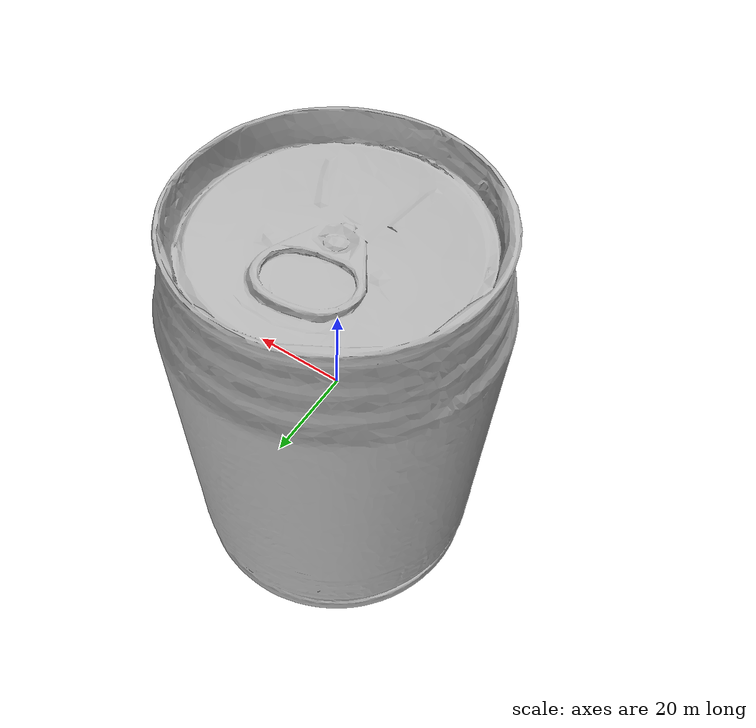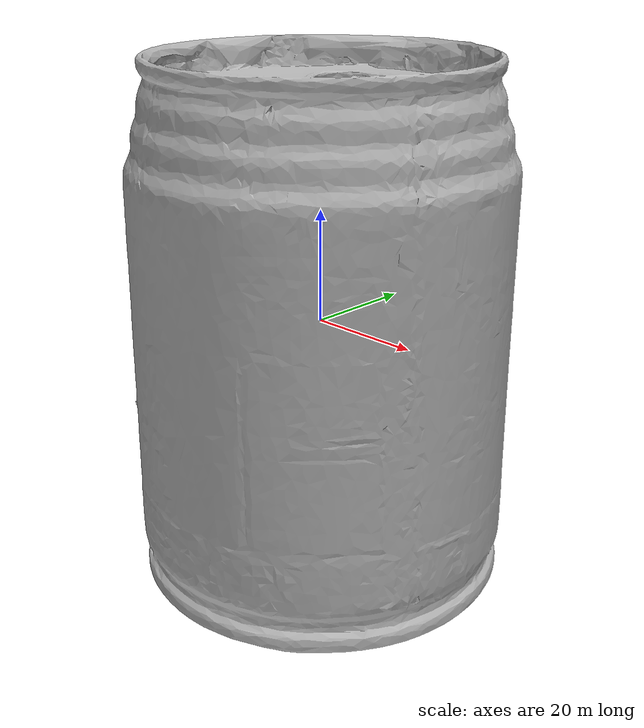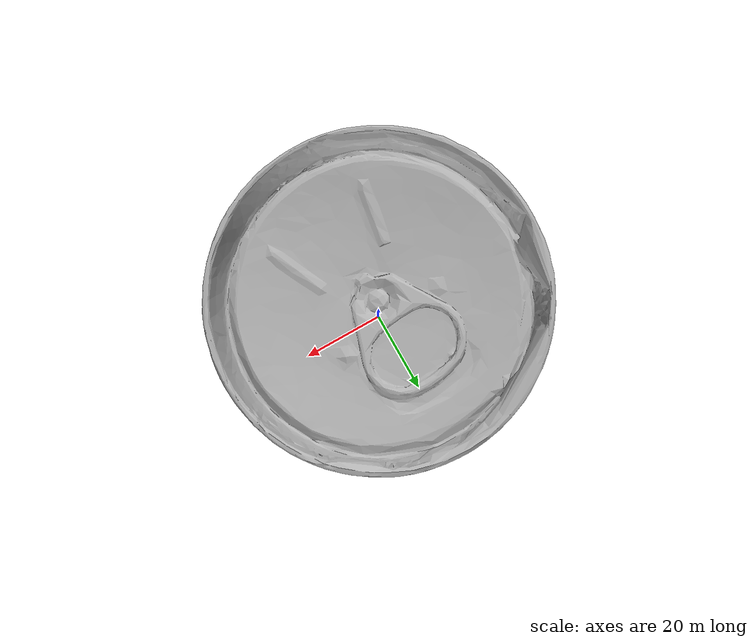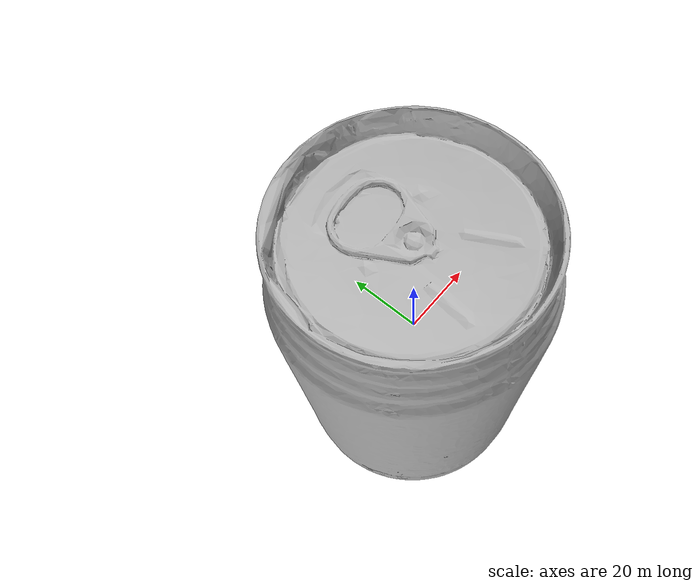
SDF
<sdf version="1.4">
 <world name="default">
  <light name="light1" type="point">
   <pose>0 0 1 0 0 0</pose>
   <diffuse>3 3 3 1</diffuse>
   <specular>3 3 3 1</specular>
  </light>
  <light name="light2" type="point">
   <pose>0 0.5 2 0 0 0</pose>
   <diffuse>1 1 1 1</diffuse>
   <specular>1 1 1 1</specular>
  </light>
  <light name="light3" type="point">
   <pose>0 0.5 2 0 0 0</pose>
   <diffuse>3 3 3 1</diffuse>
   <specular>3 3 3 1</specular>
  </light>
  <scene><ambient>0.7 0.7 0.7</ambient></scene>
  <model name="box2">
   <link name="link_box2">
    <collision name="default">
     <geometry>
      <mesh><uri>model://wooden_puzzle2/collision_meshes/collision.obj</uri><scale>1.0 1.0 1.0</scale></mesh>
     </geometry>
     <surface>
      <friction><ode><mu>0.5</mu><mu2>0.5</mu2></ode></friction>
      <contact><ode><max_vel>0</max_vel><min_depth>0.0001</min_depth><kp>1e8</kp></ode></contact>
     </surface>
    </collision>
    <visual name="default">
     <geometry>
      <mesh><uri>model://wooden_puzzle2/visual_meshes/visual.dae</uri><scale>1.0 1.0 1.0</scale></mesh>
     </geometry>
    </visual>
    <inertial>
     <mass>0.03464552015066147</mass>
     <pose>2.7402536943554878e-05 4.997663199901581e-05 6.587122334167361e-05 -0.1920274284601778 0.6112817660648215 -0.6338676817937987</pose>
     <inertia>
      <ixx>6.440233e-06</ixx>
      <iyy>6.6177017e-06</iyy>
      <izz>6.52356e-06</izz>
      <ixy>0</ixy>
      <ixz>0</ixz>
      <iyz>0</iyz>
     </inertia>
    </inertial>
   </link>
   <pose>0.28262579441070557 -0.008969889022409916 0.016917727887630463 0.020848368490384534 0.000721264974000238 -0.008964513930656141</pose>
  </model>
  <model name="box3">
   <link name="link_box3">
    <collision name="default">
     <geometry>
      <mesh><uri>model://wooden_puzzle1/collision_meshes/collision.obj</uri><scale>1.0 1.0 1.0</scale></mesh>
     </geometry>
     <surface>
      <friction><ode><mu>0.5</mu><mu2>0.5</mu2></ode></friction>
      <contact><ode><max_vel>0</max_vel><min_depth>0.0001</min_depth><kp>1e8</kp></ode></contact>
     </surface>
    </collision>
    <visual name="default">
     <geometry>
      <mesh><uri>model://wooden_puzzle1/visual_meshes/visual.dae</uri><scale>1.0 1.0 1.0</scale></mesh>
     </geometry>
    </visual>
    <inertial>
     <mass>0.03424873203039169</mass>
     <pose>-0.0001735068071866408 7.97226166469045e-05 -9.191554272547364e-05 -0.07784599296854997 -0.2636133645981781 -0.5528677830585703</pose>
     <inertia>
      <ixx>6.4618e-06</ixx>
      <iyy>6.3374077e-06</iyy>
      <izz>6.413012e-06</izz>
      <ixy>0</ixy>
      <ixz>0</ixz>
      <iyz>0</iyz>
     </inertia>
    </inertial>
   </link>
   <pose>-0.017883844673633575 -0.0416901670396328 0.016802025958895683 0.010510802475339477 -0.009455951887405185 -1.2422970558589574</pose>
  </model>
  <model name="can1">
   <link name="link_can1">
    <collision name="default">
     <geometry>
      <mesh><uri>model://pepsi/collision_meshes/collision.obj</uri><scale>1.0 1.0 1.0</scale></mesh>
     </geometry>
     <surface>
      <friction><ode><mu>0.5</mu><mu2>0.5</mu2></ode></friction>
      <contact><ode><max_vel>0</max_vel><min_depth>0.0001</min_depth><kp>1e8</kp></ode></contact>
     </surface>
    </collision>
    <visual name="default">
     <geometry><mesh><uri>model://pepsi/visual_meshes/visual.dae</uri><scale>1.0 1.0 1.0</scale></mesh></geometry>
    </visual>
    <inertial>
     <mass>0.3250696361064911</mass>
     <pose>-7.5590331107378e-05 2.99312814604491e-05 -0.0003384356386959553 -0.0010678660158137958 -0.0021735266966629516 0.5674177426725915</pose>
     <inertia>
      <ixx>0.0006476009</ixx>
      <iyy>0.0006471292</iyy>
      <izz>0.00013783273</izz>
      <ixy>0</ixy>
      <ixz>0</ixz>
      <iyz>0</iyz>
     </inertia>
    </inertial>
   </link>
   <pose>0.05043671280145645 -0.3694399893283844 0.0744963213801384 -1.9005657548911982e-05 2.14236573673511e-06 -1.0108469638808897</pose>
  </model>
  <model name="can2">
   <link name="link_can2">
    <collision name="default">
     <geometry>
      <mesh><uri>model://redbull/collision_meshes/collision.obj</uri><scale>1.0 1.0 1.0</scale></mesh>
     </geometry>
     <surface>
      <friction><ode><mu>0.5</mu><mu2>0.5</mu2></ode></friction>
      <contact><ode><max_vel>0</max_vel><min_depth>0.0001</min_depth><kp>1e8</kp></ode></contact>
     </surface>
    </collision>
    <visual name="default">
     <geometry>
      <mesh><uri>model://redbull/visual_meshes/visual.dae</uri><scale>1.0 1.0 1.0</scale></mesh>
     </geometry>
    </visual>
    <inertial>
     <mass>0.28235653042793274</mass>
     <pose>-2.2127058400656097e-05 -0.00012659600179176778 -0.0006860987632535398 0.0011377565977294822 -0.010800863454111471 0.5858141898730843</pose>
     <inertia>
      <ixx>0.0002654759</ixx>
      <iyy>0.0002657</iyy>
      <izz>0.00015754026</izz>
      <ixy>0</ixy>
      <ixz>0</ixz>
      <iyz>0</iyz>
     </inertia>
    </inertial>
   </link>
   <pose>0.02745736576616764 0.1032399982213974 0.046385616064071655 -0.010489447827262213 0.007260770111431219 -2.59947741166652</pose>
  </model>
  <physics type="ode">
   <max_contacts>50</max_contacts>
   <ode>
    <solver><type>quick</type><iters>75</iters></solver>
    <constraints>
     <contact_max_correcting_vel>0</contact_max_correcting_vel>
     <contact_surface_layer>0</contact_surface_layer>
    </constraints>
   </ode>
  </physics>
 </world>
</sdf>
